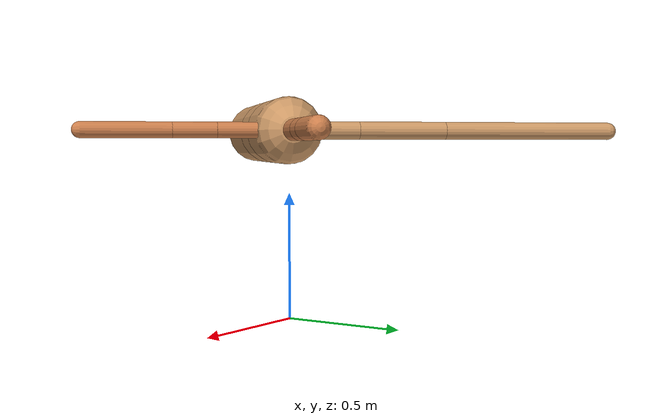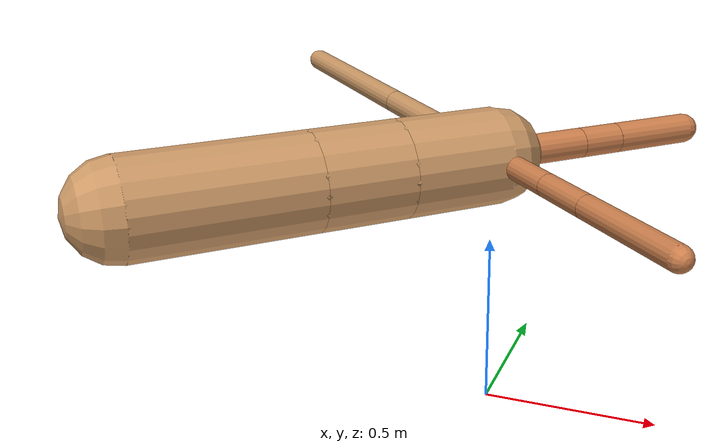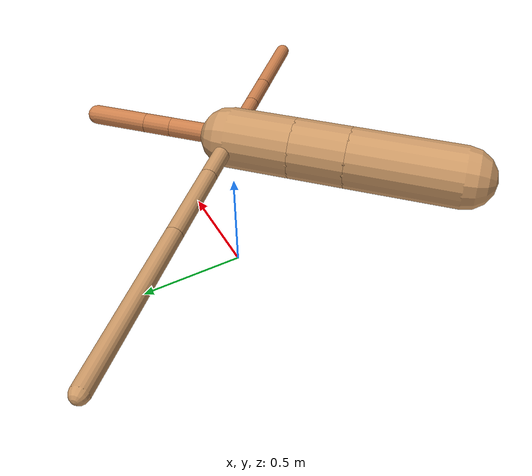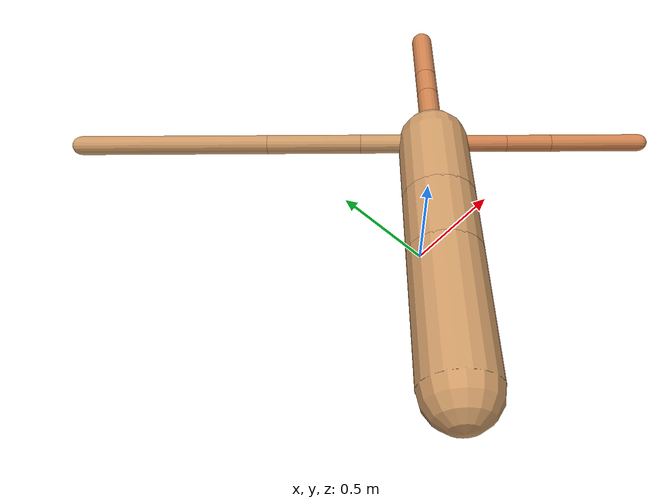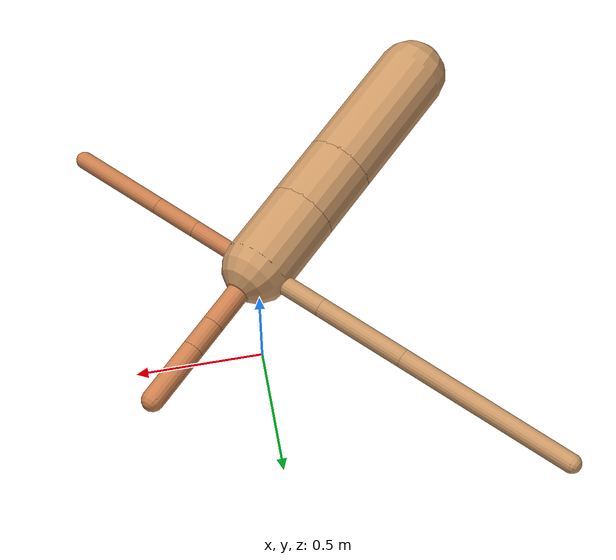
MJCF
<?xml version="1.0" ?>
<mujoco model="ant">

	<compiler angle="degree" coordinate="local" inertiafromgeom="true"/>

	<option integrator="RK4" timestep="0.01"/>

	<custom>

		<numeric data="0.0 0.0 0.55 1.0 0.0 0.0 0.0 0.0 1.0 0.0 -1.0 0.0 -1.0 0.0 1.0" name="init_qpos"/>

	</custom>

	<default>

		<joint armature="1" damping="1" limited="true"/>

		<geom conaffinity="0" condim="3" density="5.0" friction="1.5 0.1 0.1" margin="0.01" rgba="0.8 0.6 0.4 1"/>

	</default>

	<worldbody>

		<body name="torso" pos="0 0 0.75">

			<geom name="torso_geom" pos="0 0 0" size="0.0907867676830901" type="sphere"/>

			<!--joint armature="0" damping="0" limited="false" margin="0.01" name="root" pos="0 0 0" type="free"/-->

			<body name="front_left_leg" pos="0 0 0">

				<geom fromto="0 0 0 0.2 0.2 0" name="aux_1_geom" size="0.042980686914590616" type="capsule" rgba=".8 .5 .3 1"/>

				<body name="aux_1" pos="0.2 0.2 0">

					<joint axis="0 0 1" name="hip_1" pos="0.0 0.0 0.0" range="-40 40" type="hinge"/>

					<geom fromto="0 0 0 0.08569931936559615 0.08569931936559615 0" name="left_leg_geom" size="0.042980686914590616" type="capsule" rgba=".8 .5 .3 1"/>

					<body pos="0.08569931936559615 0.08569931936559615 0" name="front_left_foot">

						<joint axis="-1 1 0" name="ankle_1" pos="0.0 0.0 0.0" range="30 100" type="hinge"/>

						<geom fromto="0 0 0 0.1713986387311923 0.1713986387311923 0" name="left_ankle_geom" size="0.042980686914590616" type="capsule" rgba=".8 .5 .3 1"/>

					</body>

				</body>

			</body>

			<body name="front_right_leg" pos="0 0 0">

				<geom fromto="0 0 0 -0.2 0.2 0" name="aux_2_geom" size="0.036190431862596475" type="capsule"/>

				<body name="aux_2" pos="-0.2 0.2 0">

					<joint axis="0 0 1" name="hip_2" pos="0.0 0.0 0.0" range="-40 40" type="hinge"/>

					<geom fromto="0 0 0 -0.2544265504664231 0.2544265504664231 0" name="right_leg_geom" size="0.036190431862596475" type="capsule"/>

					<body pos="-0.2544265504664231 0.2544265504664231 0" name="front_right_foot">

						<joint axis="1 1 0" name="ankle_2" pos="0.0 0.0 0.0" range="-100 -30" type="hinge"/>

						<geom fromto="0 0 0 -0.5088531009328462 0.5088531009328462 0" name="right_ankle_geom" size="0.036190431862596475" type="capsule"/>

					</body>

				</body>

			</body>

			<body name="left_back_leg" pos="0 0 0">

				<geom fromto="0 0 0 -0.2 -0.2 0" name="aux_3_geom" size="0.13441084869378436" type="capsule"/>

				<body name="aux_3" pos="-0.2 -0.2 0">

					<joint axis="0 0 1" name="hip_3" pos="0.0 0.0 0.0" range="-40 40" type="hinge"/>

					<geom fromto="0 0 0 -0.17190800051532557 -0.17190800051532557 0" name="back_leg_geom" size="0.13441084869378436" type="capsule"/>

					<body pos="-0.17190800051532557 -0.17190800051532557 0" name="left_back_foot">

						<joint axis="-1 1 0" name="ankle_3" pos="0.0 0.0 0.0" range="-100 -30" type="hinge"/>

						<geom fromto="0 0 0 -0.34381600103065113 -0.34381600103065113 0" name="third_ankle_geom" size="0.13441084869378436" type="capsule"/>

					</body>

				</body>

			</body>

			<body name="right_back_leg" pos="0 0 0">

				<geom fromto="0 0 0 0.2 -0.2 0" name="aux_4_geom" size="0.03239980699182965" type="capsule" rgba=".8 .5 .3 1"/>

				<body name="aux_4" pos="0.2 -0.2 0">

					<joint axis="0 0 1" name="hip_4" pos="0.0 0.0 0.0" range="-40 40" type="hinge"/>

					<geom fromto="0 0 0 0.12154457465074774 -0.12154457465074774 0" name="rightback_leg_geom" size="0.03239980699182965" type="capsule" rgba=".8 .5 .3 1"/>

					<body pos="0.12154457465074774 -0.12154457465074774 0" name="right_back_foot">

						<joint axis="1 1 0" name="ankle_4" pos="0.0 0.0 0.0" range="30 100" type="hinge"/>

						<geom fromto="0 0 0 0.24308914930149547 -0.24308914930149547 0" name="fourth_ankle_geom" size="0.03239980699182965" type="capsule" rgba=".8 .5 .3 1"/>

					</body>

				</body>

			</body>

		</body>

	</worldbody>

	<actuator>

		<motor ctrllimited="true" ctrlrange="-1.0 1.0" joint="hip_4" gear="150"/>

		<motor ctrllimited="true" ctrlrange="-1.0 1.0" joint="ankle_4" gear="150"/>

		<motor ctrllimited="true" ctrlrange="-1.0 1.0" joint="hip_1" gear="150"/>

		<motor ctrllimited="true" ctrlrange="-1.0 1.0" joint="ankle_1" gear="150"/>

		<motor ctrllimited="true" ctrlrange="-1.0 1.0" joint="hip_2" gear="150"/>

		<motor ctrllimited="true" ctrlrange="-1.0 1.0" joint="ankle_2" gear="150"/>

		<motor ctrllimited="true" ctrlrange="-1.0 1.0" joint="hip_3" gear="150"/>

		<motor ctrllimited="true" ctrlrange="-1.0 1.0" joint="ankle_3" gear="150"/>

	</actuator>

</mujoco>
